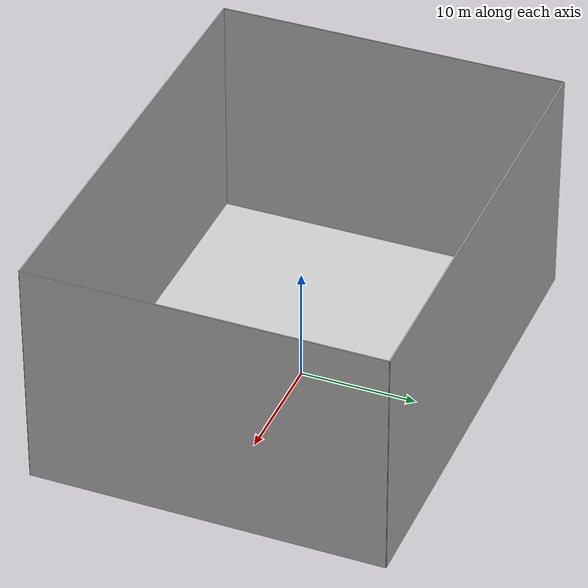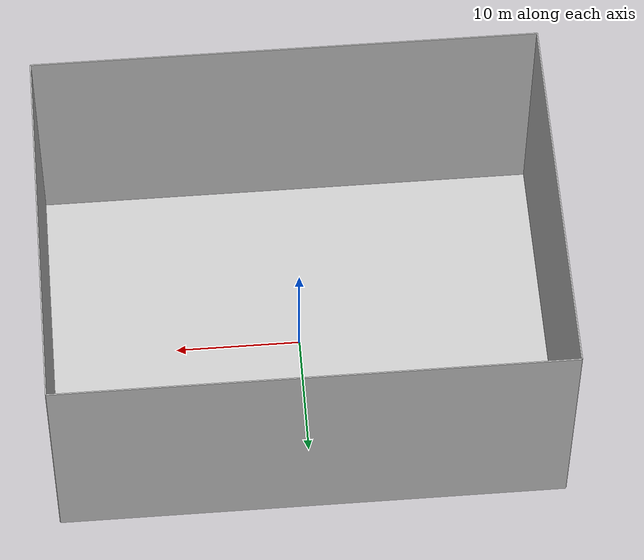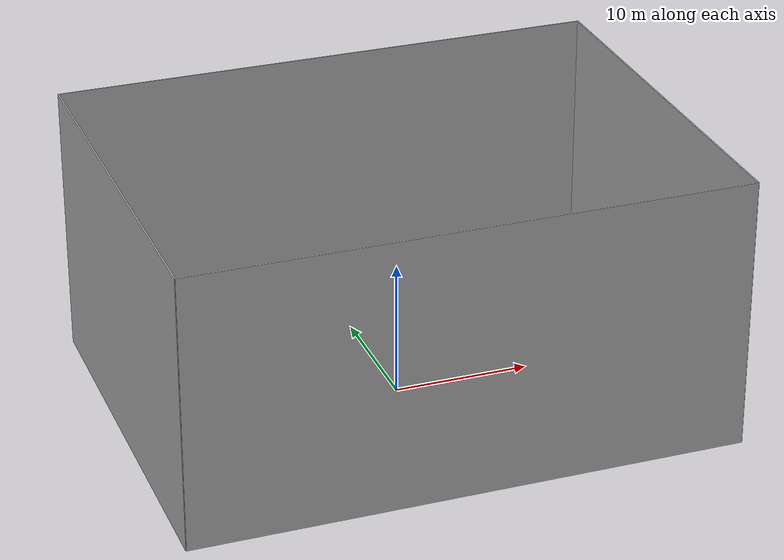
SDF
<?xml version="1.0" ?>
<sdf version="1.6">
  <world name="room_world">

<gui fullscreen="0">
  <camera name="user_camera">
    <pose>0 0 40 0 1.57 1.57</pose>
    <view_controller>orbit</view_controller>
    <projection_type>perspective</projection_type>
  </camera>
</gui>
    <include>
      <uri>model://sun</uri>
    </include>

<model name="textured_floor">
  <static>true</static>
  <link name="floor_link">
    <collision name="floor_collision">
      <geometry>
        <plane>
          <normal>0 0 1.2</normal>
          <size>40 30</size>
        </plane>
      </geometry>
      <surface>
        <contact>
          <collide_without_contact>false</collide_without_contact>
        </contact>
      </surface>
    </collision>
    <visual name="floor_visual">
      <geometry>
        <plane>
          <normal>0 0 1.2</normal>
          <size>40 30</size>
        </plane>
      </geometry>
      <material>
  <script>
    <uri>file://media/materials/scripts</uri>
    <uri>file://media/materials/textures</uri>
    <name>MyRoom/Floor</name>
  </script>
</material>
    </visual>
  </link>
</model>

    <model name="room_40x30">
      <static>true</static>

      <!-- North wall (along X, +Y) -->
      <link name="wall_n">
        <pose>0 15.05 10.0 0 0 0</pose>
        <collision name="col">
          <geometry><box><size>40.1 0.1 20.0</size></box></geometry>
        </collision>
        <visual name="vis">
          <geometry><box><size>40.1 0.1 20.0</size></box></geometry>
        </visual>
      </link>

      <!-- South wall (along X, -Y) -->
      <link name="wall_s">
        <pose>0 -15.05 10.0 0 0 0</pose>
        <collision name="col">
          <geometry><box><size>40.1 0.1 20.0</size></box></geometry>
        </collision>
        <visual name="vis">
          <geometry><box><size>40.1 0.1 20.0</size></box></geometry>
        </visual>
      </link>

      <!-- East wall (along Y, +X) -->
      <link name="wall_e">
        <pose>20.05 0 10.0 0 0 0</pose>
        <collision name="col">
          <geometry><box><size>0.1 30.1 20.0</size></box></geometry>
        </collision>
        <visual name="vis">
          <geometry><box><size>0.1 30.1 20.0</size></box></geometry>
        </visual>
      </link>

      <!-- West wall (along Y, -X) -->
      <link name="wall_w">
        <pose>-20.05 0 10.0 0 0 0</pose>
        <collision name="col">
          <geometry><box><size>0.1 30.1 20.0</size></box></geometry>
        </collision>
        <visual name="vis">
          <geometry><box><size>0.1 30.1 20.0</size></box></geometry>
        </visual>
      </link>

    </model>

  </world>
</sdf>
